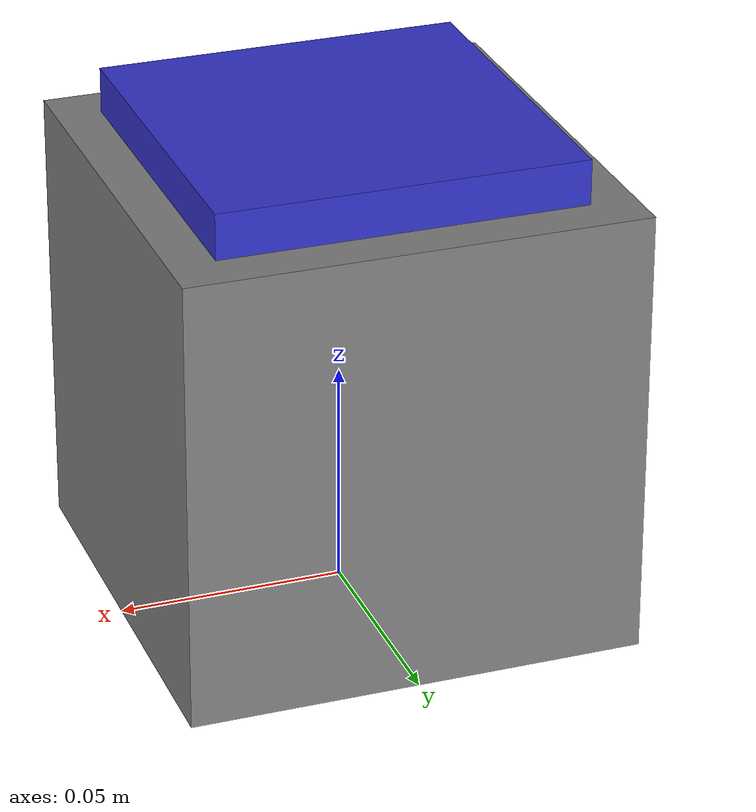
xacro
<?xml version="1.0"?>
<robot xmlns:xacro="http://www.ros.org/wiki/xacro" name="linear_actuator_robot">

  <!-- Include ros2_control xacro macros -->
  <xacro:include filename="$(find linear_actuator_hardware)/urdf/linear_actuator.ros2_control.xacro" />

  <!-- Base link (fixed to world) -->
  <link name="base_link">
    <visual>
      <origin xyz="0 0 0.05" rpy="0 0 0"/>
      <geometry>
        <box size="0.1 0.1 0.1"/>
      </geometry>
      <material name="gray">
        <color rgba="0.5 0.5 0.5 1.0"/>
      </material>
    </visual>
    <collision>
      <origin xyz="0 0 0.05" rpy="0 0 0"/>
      <geometry>
        <box size="0.1 0.1 0.1"/>
      </geometry>
    </collision>
    <inertial>
      <mass value="1.0"/>
      <inertia ixx="0.001" ixy="0.0" ixz="0.0" iyy="0.001" iyz="0.0" izz="0.001"/>
    </inertial>
  </link>

  <!-- Moving platform -->
  <link name="platform_link">
    <visual>
      <origin xyz="0 0 0" rpy="0 0 0"/>
      <geometry>
        <box size="0.08 0.08 0.02"/>
      </geometry>
      <material name="blue">
        <color rgba="0.2 0.2 0.8 1.0"/>
      </material>
    </visual>
    <collision>
      <origin xyz="0 0 0" rpy="0 0 0"/>
      <geometry>
        <box size="0.08 0.08 0.02"/>
      </geometry>
    </collision>
    <inertial>
      <mass value="0.5"/>
      <inertia ixx="0.0001" ixy="0.0" ixz="0.0" iyy="0.0001" iyz="0.0" izz="0.0001"/>
    </inertial>
  </link>

  <!-- Prismatic joint (linear actuator) -->
  <joint name="linear_actuator_joint" type="prismatic">
    <parent link="base_link"/>
    <child link="platform_link"/>
    <origin xyz="0 0 0.1" rpy="0 0 0"/>
    <axis xyz="0 0 1"/>
    <limit lower="0.0" upper="0.5" effort="100.0" velocity="0.1"/>
  </joint>

  <!-- Add ros2_control hardware interface -->
  <xacro:linear_actuator_ros2_control
    name="LinearActuatorSystem"
    use_simulation="true"
    device_port="/dev/ttyUSB0"
    baud_rate="115200"/>

</robot>
